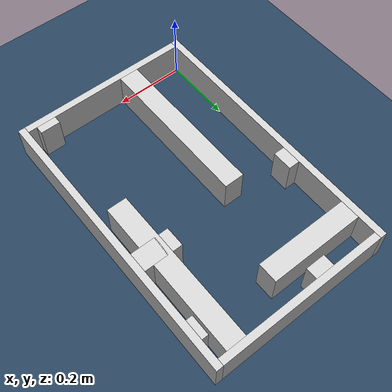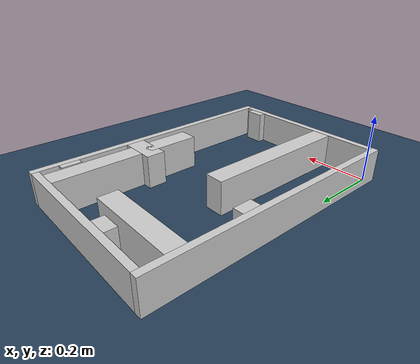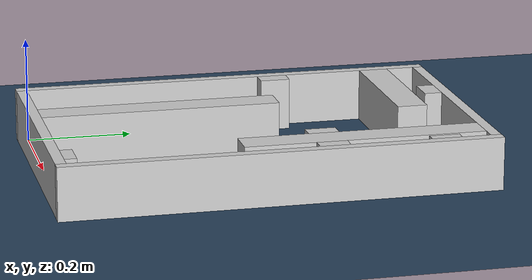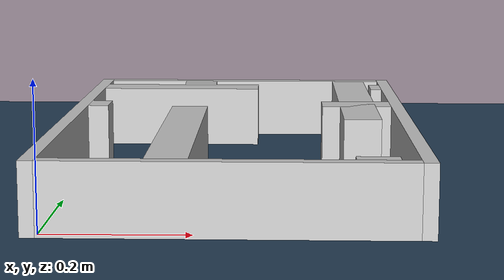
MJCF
<?xml version="1.0" ?>
<mujoco model="generated_real_template">
  <compiler angle="degree"/>
  <option timestep="0.002" integrator="implicitfast" iterations="100" cone="elliptic"/>
  <default>
    <geom density="1"/>
  </default>
  <asset>
    <texture builtin="gradient" height="3072" rgb1="0.3 0.5 0.7" rgb2="0 0 0" type="skybox" width="512"/>
    <texture builtin="checker" height="300" mark="edge" markrgb="0.8 0.8 0.8" name="groundplane" rgb1="0.2 0.3 0.4" rgb2="0.1 0.2 0.3" type="2d" width="300"/>
    <material name="groundplane" reflectance="0.2" texrepeat="5 5" texture="groundplane" texuniform="true"/>
  </asset>
  <worldbody>
    <light dir="0 0 -1" directional="true" pos="0 0 1.5"/>
    <geom name="floor" type="plane" condim="4" friction="0.5 0.005 0.001" material="groundplane" size="0 0 0.05"/>
    <body name="walls">
      <geom name="wall_boundary_left" type="box" condim="4" friction="1.0 0.005 0.0001" rgba="0.8 0.8 0.8 1" pos="-0.010000 0.387500 0.050000" euler="0 0 0.000000" size="0.010000 0.407500 0.050000"/>
      <geom name="wall_boundary_right" type="box" condim="4" friction="1.0 0.005 0.0001" rgba="0.8 0.8 0.8 1" pos="0.500000 0.387500 0.050000" euler="0 0 0.000000" size="0.010000 0.407500 0.050000"/>
      <geom name="wall_boundary_bottom" type="box" condim="4" friction="1.0 0.005 0.0001" rgba="0.8 0.8 0.8 1" pos="0.245000 -0.010000 0.050000" euler="0 0 0.000000" size="0.245000 0.010000 0.050000"/>
      <geom name="wall_boundary_top" type="box" condim="4" friction="1.0 0.005 0.0001" rgba="0.8 0.8 0.8 1" pos="0.245000 0.785000 0.050000" euler="0 0 0.000000" size="0.245000 0.010000 0.050000"/>
      <geom name="wall_inner_1_1" type="box" condim="4" friction="1.0 0.005 0.0001" rgba="0.8 0.8 0.8 1" pos="0.165905 0.226794 0.050000" euler="0 0 90.000000" size="0.226794 0.028500 0.050000"/>
      <geom name="wall_inner_1_2" type="box" condim="4" friction="1.0 0.005 0.0001" rgba="0.8 0.8 0.8 1" pos="0.165905 0.758204 0.050000" euler="0 0 90.000000" size="0.016796 0.028500 0.050000"/>
      <geom name="wall_inner_2_1" type="box" condim="4" friction="1.0 0.005 0.0001" rgba="0.8 0.8 0.8 1" pos="0.436334 0.011392 0.050000" euler="0 0 90.000000" size="0.011392 0.028500 0.050000"/>
      <geom name="wall_inner_2_2" type="box" condim="4" friction="1.0 0.005 0.0001" rgba="0.8 0.8 0.8 1" pos="0.436334 0.549396 0.050000" euler="0 0 90.000000" size="0.225604 0.028500 0.050000"/>
      <geom name="wall_inner_3_1" type="box" condim="4" friction="1.0 0.005 0.0001" rgba="0.8 0.8 0.8 1" pos="0.136008 0.693062 0.050000" euler="0 0 0.000000" size="0.136008 0.028500 0.050000"/>
      <geom name="wall_inner_3_2" type="box" condim="4" friction="1.0 0.005 0.0001" rgba="0.8 0.8 0.8 1" pos="0.480604 0.693062 0.050000" euler="0 0 0.000000" size="0.009396 0.028500 0.050000"/>
      <geom name="wall_inner_4_1" type="box" condim="4" friction="1.0 0.005 0.0001" rgba="0.8 0.8 0.8 1" pos="0.016413 0.484586 0.050000" euler="0 0 0.000000" size="0.016413 0.028500 0.050000"/>
      <geom name="wall_inner_4_2" type="box" condim="4" friction="1.0 0.005 0.0001" rgba="0.8 0.8 0.8 1" pos="0.434735 0.484586 0.050000" euler="0 0 0.000000" size="0.055265 0.028500 0.050000"/>
    </body>
  </worldbody>
</mujoco>
